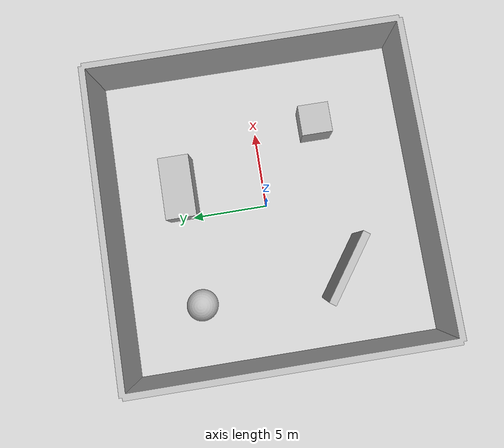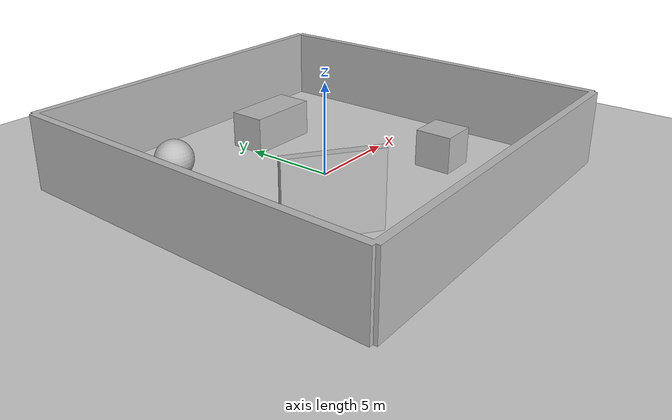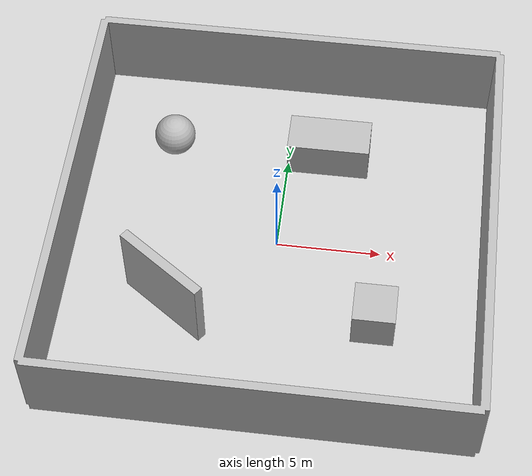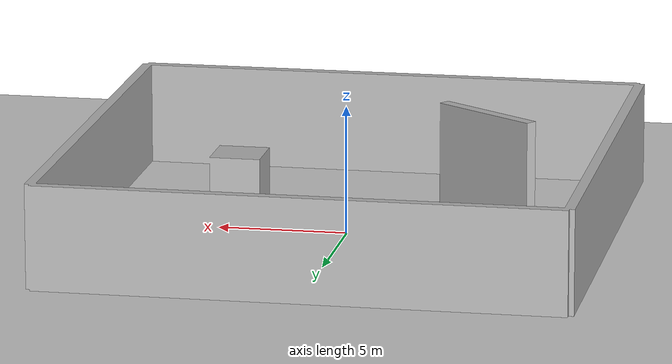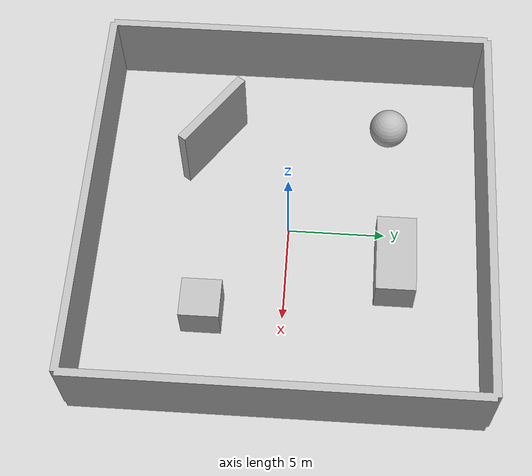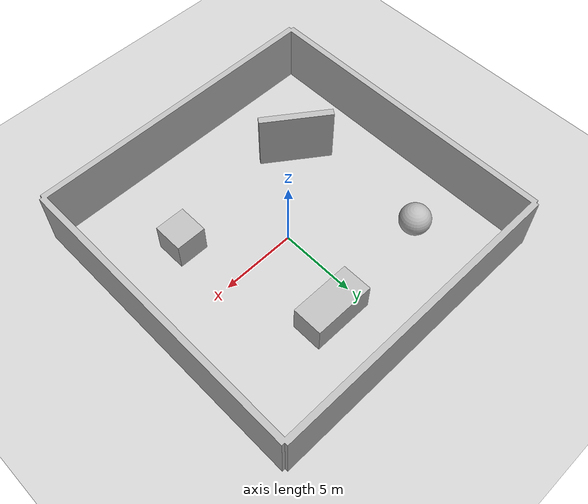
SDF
<?xml version="1.0" ?>
<sdf version="1.4">
    <world name="default">
        <include>
            <uri>model://ground_plane</uri>
        </include>
        <include>
            <uri>model://sun</uri>
        </include>
        <include>
            <uri>model://navigation_environment</uri>
        </include>
        <!-- Manually spawn model from urdf -->
    </world>
</sdf>

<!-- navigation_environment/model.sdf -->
<sdf version='1.6'>
  <model name='navigation_environment'>
    <static>true</static>
    <link name='base_link'>
      <inertial>
        <mass>1</mass>
        <inertia>
          <ixx>1</ixx>
          <iyy>1</iyy>
          <izz>1</izz>
          <ixy>0</ixy>
          <ixz>0</ixz>
          <iyz>0</iyz>
        </inertia>
      </inertial>
      <collision name='base_link_collision'>
        <geometry>
          <mesh>
            <scale>1 1 1</scale>
            <uri>model://navigation_environment/meshes/mesh.dae</uri>
          </mesh>
        </geometry>
      </collision>
      <visual name='base_link_visual'>
        <geometry>
          <mesh>
            <scale>1 1 1</scale>
            <uri>model://navigation_environment/meshes/mesh.dae</uri>
          </mesh>
        </geometry>
      </visual>
    </link>
  </model>
</sdf>
